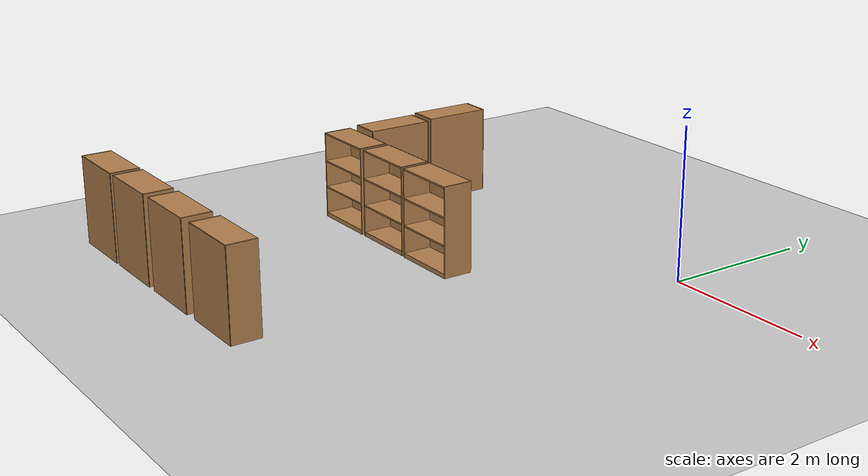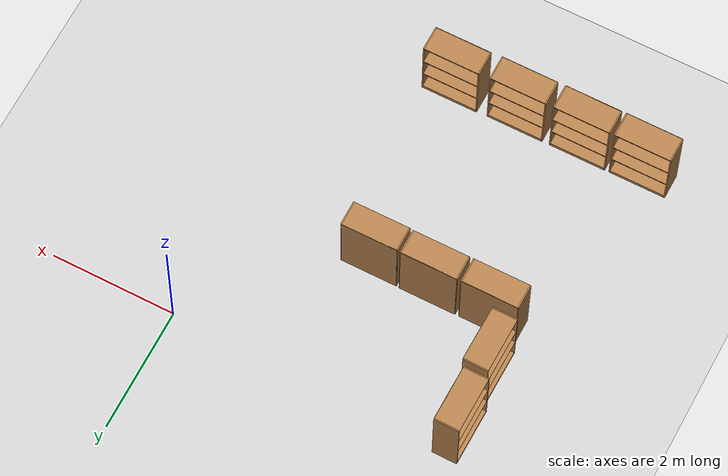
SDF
<sdf version="1.7">
 <world name="default">
  <model name="ground_plane">
   <static>1</static>
   <link name="link">
    <collision name="collision">
     <geometry><plane><normal>0 0 1</normal><size>100 100</size></plane></geometry>
     <surface><friction><ode><mu>100</mu><mu2>50</mu2></ode></friction></surface>
    </collision>
    <visual name="visual">
     <cast_shadows>0</cast_shadows>
     <geometry><plane><normal>0 0 1</normal><size>100 100</size></plane></geometry>
     <material>
      <script><uri>file://media/materials/scripts/gazebo.material</uri><name>Gazebo/Grey</name></script>
     </material>
    </visual>
   </link>
  </model>
  <model name="bookshelf_1">
   <static>1</static>
   <link name="link">
    <inertial><mass>1</mass></inertial>
    <collision name="back">
     <pose>0 0.005 0.6 0 -0 0</pose>
     <geometry><box><size>0.9 0.01 1.2</size></box></geometry>
    </collision>
    <visual name="visual1">
     <pose>0 0.005 0.6 0 -0 0</pose>
     <geometry><box><size>0.9 0.01 1.2</size></box></geometry>
     <material>
      <script><uri>file://media/materials/scripts/gazebo.material</uri><name>Gazebo/Wood</name></script>
     </material>
    </visual>
    <collision name="left_side">
     <pose>0.45 -0.195 0.6 0 -0 0</pose>
     <geometry><box><size>0.02 0.4 1.2</size></box></geometry>
    </collision>
    <visual name="visual2">
     <pose>0.45 -0.195 0.6 0 -0 0</pose>
     <geometry><box><size>0.02 0.4 1.2</size></box></geometry>
     <material>
      <script><uri>file://media/materials/scripts/gazebo.material</uri><name>Gazebo/Wood</name></script>
     </material>
    </visual>
    <collision name="right_side">
     <pose>-0.45 -0.195 0.6 0 -0 0</pose>
     <geometry><box><size>0.02 0.4 1.2</size></box></geometry>
    </collision>
    <visual name="visual3">
     <pose>-0.45 -0.195 0.6 0 -0 0</pose>
     <geometry><box><size>0.02 0.4 1.2</size></box></geometry>
     <material>
      <script><uri>file://media/materials/scripts/gazebo.material</uri><name>Gazebo/Wood</name></script>
     </material>
    </visual>
    <collision name="bottom">
     <pose>0 -0.195 0.03 0 -0 0</pose>
     <geometry><box><size>0.88 0.4 0.06</size></box></geometry>
    </collision>
    <visual name="visual4">
     <pose>0 -0.195 0.03 0 -0 0</pose>
     <geometry><box><size>0.88 0.4 0.06</size></box></geometry>
     <material>
      <script><uri>file://media/materials/scripts/gazebo.material</uri><name>Gazebo/Wood</name></script>
     </material>
    </visual>
    <collision name="top">
     <pose>0 -0.195 1.19 0 -0 0</pose>
     <geometry><box><size>0.88 0.4 0.02</size></box></geometry>
    </collision>
    <visual name="visual5">
     <pose>0 -0.195 1.19 0 -0 0</pose>
     <geometry><box><size>0.88 0.4 0.02</size></box></geometry>
     <material>
      <script><uri>file://media/materials/scripts/gazebo.material</uri><name>Gazebo/Wood</name></script>
     </material>
    </visual>
    <collision name="low_shelf">
     <pose>0 -0.195 0.43 0 -0 0</pose>
     <geometry><box><size>0.88 0.4 0.02</size></box></geometry>
    </collision>
    <visual name="visual6">
     <pose>0 -0.195 0.43 0 -0 0</pose>
     <geometry><box><size>0.88 0.4 0.02</size></box></geometry>
     <material>
      <script><uri>file://media/materials/scripts/gazebo.material</uri><name>Gazebo/Wood</name></script>
     </material>
    </visual>
    <collision name="high_shelf">
     <pose>0 -0.195 0.8 0 -0 0</pose>
     <geometry><box><size>0.88 0.4 0.02</size></box></geometry>
    </collision>
    <visual name="visual7">
     <pose>0 -0.195 0.8 0 -0 0</pose>
     <geometry><box><size>0.88 0.4 0.02</size></box></geometry>
     <material>
      <script><uri>file://media/materials/scripts/gazebo.material</uri><name>Gazebo/Wood</name></script>
     </material>
    </visual>
   </link>
   <pose>-2.19834 -1.90275 0 0 -0 0</pose>
  </model>
  <model name="bookshelf_2">
   <static>1</static>
   <link name="link">
    <inertial><mass>1</mass></inertial>
    <collision name="back">
     <pose>0 0.005 0.6 0 -0 0</pose>
     <geometry><box><size>0.9 0.01 1.2</size></box></geometry>
    </collision>
    <visual name="visual1">
     <pose>0 0.005 0.6 0 -0 0</pose>
     <geometry><box><size>0.9 0.01 1.2</size></box></geometry>
     <material>
      <script><uri>file://media/materials/scripts/gazebo.material</uri><name>Gazebo/Wood</name></script>
     </material>
    </visual>
    <collision name="left_side">
     <pose>0.45 -0.195 0.6 0 -0 0</pose>
     <geometry><box><size>0.02 0.4 1.2</size></box></geometry>
    </collision>
    <visual name="visual2">
     <pose>0.45 -0.195 0.6 0 -0 0</pose>
     <geometry><box><size>0.02 0.4 1.2</size></box></geometry>
     <material>
      <script><uri>file://media/materials/scripts/gazebo.material</uri><name>Gazebo/Wood</name></script>
     </material>
    </visual>
    <collision name="right_side">
     <pose>-0.45 -0.195 0.6 0 -0 0</pose>
     <geometry><box><size>0.02 0.4 1.2</size></box></geometry>
    </collision>
    <visual name="visual3">
     <pose>-0.45 -0.195 0.6 0 -0 0</pose>
     <geometry><box><size>0.02 0.4 1.2</size></box></geometry>
     <material>
      <script><uri>file://media/materials/scripts/gazebo.material</uri><name>Gazebo/Wood</name></script>
     </material>
    </visual>
    <collision name="bottom">
     <pose>0 -0.195 0.03 0 -0 0</pose>
     <geometry><box><size>0.88 0.4 0.06</size></box></geometry>
    </collision>
    <visual name="visual4">
     <pose>0 -0.195 0.03 0 -0 0</pose>
     <geometry><box><size>0.88 0.4 0.06</size></box></geometry>
     <material>
      <script><uri>file://media/materials/scripts/gazebo.material</uri><name>Gazebo/Wood</name></script>
     </material>
    </visual>
    <collision name="top">
     <pose>0 -0.195 1.19 0 -0 0</pose>
     <geometry><box><size>0.88 0.4 0.02</size></box></geometry>
    </collision>
    <visual name="visual5">
     <pose>0 -0.195 1.19 0 -0 0</pose>
     <geometry><box><size>0.88 0.4 0.02</size></box></geometry>
     <material>
      <script><uri>file://media/materials/scripts/gazebo.material</uri><name>Gazebo/Wood</name></script>
     </material>
    </visual>
    <collision name="low_shelf">
     <pose>0 -0.195 0.43 0 -0 0</pose>
     <geometry><box><size>0.88 0.4 0.02</size></box></geometry>
    </collision>
    <visual name="visual6">
     <pose>0 -0.195 0.43 0 -0 0</pose>
     <geometry><box><size>0.88 0.4 0.02</size></box></geometry>
     <material>
      <script><uri>file://media/materials/scripts/gazebo.material</uri><name>Gazebo/Wood</name></script>
     </material>
    </visual>
    <collision name="high_shelf">
     <pose>0 -0.195 0.8 0 -0 0</pose>
     <geometry><box><size>0.88 0.4 0.02</size></box></geometry>
    </collision>
    <visual name="visual7">
     <pose>0 -0.195 0.8 0 -0 0</pose>
     <geometry><box><size>0.88 0.4 0.02</size></box></geometry>
     <material>
      <script><uri>file://media/materials/scripts/gazebo.material</uri><name>Gazebo/Wood</name></script>
     </material>
    </visual>
   </link>
   <pose>-3.15819 -1.89537 0 0 -0 0</pose>
  </model>
  <model name="bookshelf_3">
   <static>1</static>
   <link name="link">
    <inertial><mass>1</mass></inertial>
    <collision name="back">
     <pose>0 0.005 0.6 0 -0 0</pose>
     <geometry><box><size>0.9 0.01 1.2</size></box></geometry>
    </collision>
    <visual name="visual1">
     <pose>0 0.005 0.6 0 -0 0</pose>
     <geometry><box><size>0.9 0.01 1.2</size></box></geometry>
     <material>
      <script><uri>file://media/materials/scripts/gazebo.material</uri><name>Gazebo/Wood</name></script>
     </material>
    </visual>
    <collision name="left_side">
     <pose>0.45 -0.195 0.6 0 -0 0</pose>
     <geometry><box><size>0.02 0.4 1.2</size></box></geometry>
    </collision>
    <visual name="visual2">
     <pose>0.45 -0.195 0.6 0 -0 0</pose>
     <geometry><box><size>0.02 0.4 1.2</size></box></geometry>
     <material>
      <script><uri>file://media/materials/scripts/gazebo.material</uri><name>Gazebo/Wood</name></script>
     </material>
    </visual>
    <collision name="right_side">
     <pose>-0.45 -0.195 0.6 0 -0 0</pose>
     <geometry><box><size>0.02 0.4 1.2</size></box></geometry>
    </collision>
    <visual name="visual3">
     <pose>-0.45 -0.195 0.6 0 -0 0</pose>
     <geometry><box><size>0.02 0.4 1.2</size></box></geometry>
     <material>
      <script><uri>file://media/materials/scripts/gazebo.material</uri><name>Gazebo/Wood</name></script>
     </material>
    </visual>
    <collision name="bottom">
     <pose>0 -0.195 0.03 0 -0 0</pose>
     <geometry><box><size>0.88 0.4 0.06</size></box></geometry>
    </collision>
    <visual name="visual4">
     <pose>0 -0.195 0.03 0 -0 0</pose>
     <geometry><box><size>0.88 0.4 0.06</size></box></geometry>
     <material>
      <script><uri>file://media/materials/scripts/gazebo.material</uri><name>Gazebo/Wood</name></script>
     </material>
    </visual>
    <collision name="top">
     <pose>0 -0.195 1.19 0 -0 0</pose>
     <geometry><box><size>0.88 0.4 0.02</size></box></geometry>
    </collision>
    <visual name="visual5">
     <pose>0 -0.195 1.19 0 -0 0</pose>
     <geometry><box><size>0.88 0.4 0.02</size></box></geometry>
     <material>
      <script><uri>file://media/materials/scripts/gazebo.material</uri><name>Gazebo/Wood</name></script>
     </material>
    </visual>
    <collision name="low_shelf">
     <pose>0 -0.195 0.43 0 -0 0</pose>
     <geometry><box><size>0.88 0.4 0.02</size></box></geometry>
    </collision>
    <visual name="visual6">
     <pose>0 -0.195 0.43 0 -0 0</pose>
     <geometry><box><size>0.88 0.4 0.02</size></box></geometry>
     <material>
      <script><uri>file://media/materials/scripts/gazebo.material</uri><name>Gazebo/Wood</name></script>
     </material>
    </visual>
    <collision name="high_shelf">
     <pose>0 -0.195 0.8 0 -0 0</pose>
     <geometry><box><size>0.88 0.4 0.02</size></box></geometry>
    </collision>
    <visual name="visual7">
     <pose>0 -0.195 0.8 0 -0 0</pose>
     <geometry><box><size>0.88 0.4 0.02</size></box></geometry>
     <material>
      <script><uri>file://media/materials/scripts/gazebo.material</uri><name>Gazebo/Wood</name></script>
     </material>
    </visual>
   </link>
   <pose>-4.12815 -1.89828 0 0 -0 0</pose>
  </model>
  <model name="bookshelf_4_clone_3">
   <static>1</static>
   <link name="link">
    <inertial><mass>1</mass></inertial>
    <collision name="back">
     <pose>0 0.005 0.6 0 -0 0</pose>
     <geometry><box><size>0.9 0.01 1.2</size></box></geometry>
    </collision>
    <visual name="visual1">
     <pose>0 0.005 0.6 0 -0 0</pose>
     <geometry><box><size>0.9 0.01 1.2</size></box></geometry>
     <material>
      <script><uri>file://media/materials/scripts/gazebo.material</uri><name>Gazebo/Wood</name></script>
     </material>
    </visual>
    <collision name="left_side">
     <pose>0.45 -0.195 0.6 0 -0 0</pose>
     <geometry><box><size>0.02 0.4 1.2</size></box></geometry>
    </collision>
    <visual name="visual2">
     <pose>0.45 -0.195 0.6 0 -0 0</pose>
     <geometry><box><size>0.02 0.4 1.2</size></box></geometry>
     <material>
      <script><uri>file://media/materials/scripts/gazebo.material</uri><name>Gazebo/Wood</name></script>
     </material>
    </visual>
    <collision name="right_side">
     <pose>-0.45 -0.195 0.6 0 -0 0</pose>
     <geometry><box><size>0.02 0.4 1.2</size></box></geometry>
    </collision>
    <visual name="visual3">
     <pose>-0.45 -0.195 0.6 0 -0 0</pose>
     <geometry><box><size>0.02 0.4 1.2</size></box></geometry>
     <material>
      <script><uri>file://media/materials/scripts/gazebo.material</uri><name>Gazebo/Wood</name></script>
     </material>
    </visual>
    <collision name="bottom">
     <pose>0 -0.195 0.03 0 -0 0</pose>
     <geometry><box><size>0.88 0.4 0.06</size></box></geometry>
    </collision>
    <visual name="visual4">
     <pose>0 -0.195 0.03 0 -0 0</pose>
     <geometry><box><size>0.88 0.4 0.06</size></box></geometry>
     <material>
      <script><uri>file://media/materials/scripts/gazebo.material</uri><name>Gazebo/Wood</name></script>
     </material>
    </visual>
    <collision name="top">
     <pose>0 -0.195 1.19 0 -0 0</pose>
     <geometry><box><size>0.88 0.4 0.02</size></box></geometry>
    </collision>
    <visual name="visual5">
     <pose>0 -0.195 1.19 0 -0 0</pose>
     <geometry><box><size>0.88 0.4 0.02</size></box></geometry>
     <material>
      <script><uri>file://media/materials/scripts/gazebo.material</uri><name>Gazebo/Wood</name></script>
     </material>
    </visual>
    <collision name="low_shelf">
     <pose>0 -0.195 0.43 0 -0 0</pose>
     <geometry><box><size>0.88 0.4 0.02</size></box></geometry>
    </collision>
    <visual name="visual6">
     <pose>0 -0.195 0.43 0 -0 0</pose>
     <geometry><box><size>0.88 0.4 0.02</size></box></geometry>
     <material>
      <script><uri>file://media/materials/scripts/gazebo.material</uri><name>Gazebo/Wood</name></script>
     </material>
    </visual>
    <collision name="high_shelf">
     <pose>0 -0.195 0.8 0 -0 0</pose>
     <geometry><box><size>0.88 0.4 0.02</size></box></geometry>
    </collision>
    <visual name="visual7">
     <pose>0 -0.195 0.8 0 -0 0</pose>
     <geometry><box><size>0.88 0.4 0.02</size></box></geometry>
     <material>
      <script><uri>file://media/materials/scripts/gazebo.material</uri><name>Gazebo/Wood</name></script>
     </material>
    </visual>
   </link>
   <pose>-1.94261 -5.3745 0 0 -0 3.13902</pose>
  </model>
  <model name="bookshelf_4_clone_4">
   <static>1</static>
   <link name="link">
    <inertial><mass>1</mass></inertial>
    <collision name="back">
     <pose>0 0.005 0.6 0 -0 0</pose>
     <geometry><box><size>0.9 0.01 1.2</size></box></geometry>
    </collision>
    <visual name="visual1">
     <pose>0 0.005 0.6 0 -0 0</pose>
     <geometry><box><size>0.9 0.01 1.2</size></box></geometry>
     <material>
      <script><uri>file://media/materials/scripts/gazebo.material</uri><name>Gazebo/Wood</name></script>
     </material>
    </visual>
    <collision name="left_side">
     <pose>0.45 -0.195 0.6 0 -0 0</pose>
     <geometry><box><size>0.02 0.4 1.2</size></box></geometry>
    </collision>
    <visual name="visual2">
     <pose>0.45 -0.195 0.6 0 -0 0</pose>
     <geometry><box><size>0.02 0.4 1.2</size></box></geometry>
     <material>
      <script><uri>file://media/materials/scripts/gazebo.material</uri><name>Gazebo/Wood</name></script>
     </material>
    </visual>
    <collision name="right_side">
     <pose>-0.45 -0.195 0.6 0 -0 0</pose>
     <geometry><box><size>0.02 0.4 1.2</size></box></geometry>
    </collision>
    <visual name="visual3">
     <pose>-0.45 -0.195 0.6 0 -0 0</pose>
     <geometry><box><size>0.02 0.4 1.2</size></box></geometry>
     <material>
      <script><uri>file://media/materials/scripts/gazebo.material</uri><name>Gazebo/Wood</name></script>
     </material>
    </visual>
    <collision name="bottom">
     <pose>0 -0.195 0.03 0 -0 0</pose>
     <geometry><box><size>0.88 0.4 0.06</size></box></geometry>
    </collision>
    <visual name="visual4">
     <pose>0 -0.195 0.03 0 -0 0</pose>
     <geometry><box><size>0.88 0.4 0.06</size></box></geometry>
     <material>
      <script><uri>file://media/materials/scripts/gazebo.material</uri><name>Gazebo/Wood</name></script>
     </material>
    </visual>
    <collision name="top">
     <pose>0 -0.195 1.19 0 -0 0</pose>
     <geometry><box><size>0.88 0.4 0.02</size></box></geometry>
    </collision>
    <visual name="visual5">
     <pose>0 -0.195 1.19 0 -0 0</pose>
     <geometry><box><size>0.88 0.4 0.02</size></box></geometry>
     <material>
      <script><uri>file://media/materials/scripts/gazebo.material</uri><name>Gazebo/Wood</name></script>
     </material>
    </visual>
    <collision name="low_shelf">
     <pose>0 -0.195 0.43 0 -0 0</pose>
     <geometry><box><size>0.88 0.4 0.02</size></box></geometry>
    </collision>
    <visual name="visual6">
     <pose>0 -0.195 0.43 0 -0 0</pose>
     <geometry><box><size>0.88 0.4 0.02</size></box></geometry>
     <material>
      <script><uri>file://media/materials/scripts/gazebo.material</uri><name>Gazebo/Wood</name></script>
     </material>
    </visual>
    <collision name="high_shelf">
     <pose>0 -0.195 0.8 0 -0 0</pose>
     <geometry><box><size>0.88 0.4 0.02</size></box></geometry>
    </collision>
    <visual name="visual7">
     <pose>0 -0.195 0.8 0 -0 0</pose>
     <geometry><box><size>0.88 0.4 0.02</size></box></geometry>
     <material>
      <script><uri>file://media/materials/scripts/gazebo.material</uri><name>Gazebo/Wood</name></script>
     </material>
    </visual>
   </link>
   <pose>-3.02509 -5.38795 0 0 -0 3.13902</pose>
  </model>
  <model name="bookshelf_4_clone_5">
   <static>1</static>
   <link name="link">
    <inertial><mass>1</mass></inertial>
    <collision name="back">
     <pose>0 0.005 0.6 0 -0 0</pose>
     <geometry><box><size>0.9 0.01 1.2</size></box></geometry>
    </collision>
    <visual name="visual1">
     <pose>0 0.005 0.6 0 -0 0</pose>
     <geometry><box><size>0.9 0.01 1.2</size></box></geometry>
     <material>
      <script><uri>file://media/materials/scripts/gazebo.material</uri><name>Gazebo/Wood</name></script>
     </material>
    </visual>
    <collision name="left_side">
     <pose>0.45 -0.195 0.6 0 -0 0</pose>
     <geometry><box><size>0.02 0.4 1.2</size></box></geometry>
    </collision>
    <visual name="visual2">
     <pose>0.45 -0.195 0.6 0 -0 0</pose>
     <geometry><box><size>0.02 0.4 1.2</size></box></geometry>
     <material>
      <script><uri>file://media/materials/scripts/gazebo.material</uri><name>Gazebo/Wood</name></script>
     </material>
    </visual>
    <collision name="right_side">
     <pose>-0.45 -0.195 0.6 0 -0 0</pose>
     <geometry><box><size>0.02 0.4 1.2</size></box></geometry>
    </collision>
    <visual name="visual3">
     <pose>-0.45 -0.195 0.6 0 -0 0</pose>
     <geometry><box><size>0.02 0.4 1.2</size></box></geometry>
     <material>
      <script><uri>file://media/materials/scripts/gazebo.material</uri><name>Gazebo/Wood</name></script>
     </material>
    </visual>
    <collision name="bottom">
     <pose>0 -0.195 0.03 0 -0 0</pose>
     <geometry><box><size>0.88 0.4 0.06</size></box></geometry>
    </collision>
    <visual name="visual4">
     <pose>0 -0.195 0.03 0 -0 0</pose>
     <geometry><box><size>0.88 0.4 0.06</size></box></geometry>
     <material>
      <script><uri>file://media/materials/scripts/gazebo.material</uri><name>Gazebo/Wood</name></script>
     </material>
    </visual>
    <collision name="top">
     <pose>0 -0.195 1.19 0 -0 0</pose>
     <geometry><box><size>0.88 0.4 0.02</size></box></geometry>
    </collision>
    <visual name="visual5">
     <pose>0 -0.195 1.19 0 -0 0</pose>
     <geometry><box><size>0.88 0.4 0.02</size></box></geometry>
     <material>
      <script><uri>file://media/materials/scripts/gazebo.material</uri><name>Gazebo/Wood</name></script>
     </material>
    </visual>
    <collision name="low_shelf">
     <pose>0 -0.195 0.43 0 -0 0</pose>
     <geometry><box><size>0.88 0.4 0.02</size></box></geometry>
    </collision>
    <visual name="visual6">
     <pose>0 -0.195 0.43 0 -0 0</pose>
     <geometry><box><size>0.88 0.4 0.02</size></box></geometry>
     <material>
      <script><uri>file://media/materials/scripts/gazebo.material</uri><name>Gazebo/Wood</name></script>
     </material>
    </visual>
    <collision name="high_shelf">
     <pose>0 -0.195 0.8 0 -0 0</pose>
     <geometry><box><size>0.88 0.4 0.02</size></box></geometry>
    </collision>
    <visual name="visual7">
     <pose>0 -0.195 0.8 0 -0 0</pose>
     <geometry><box><size>0.88 0.4 0.02</size></box></geometry>
     <material>
      <script><uri>file://media/materials/scripts/gazebo.material</uri><name>Gazebo/Wood</name></script>
     </material>
    </visual>
   </link>
   <pose>-4.05654 -5.39104 0 0 -0 3.13902</pose>
  </model>
  <model name="bookshelf_4_clone_6">
   <static>1</static>
   <link name="link">
    <inertial><mass>1</mass></inertial>
    <collision name="back">
     <pose>0 0.005 0.6 0 -0 0</pose>
     <geometry><box><size>0.9 0.01 1.2</size></box></geometry>
    </collision>
    <visual name="visual1">
     <pose>0 0.005 0.6 0 -0 0</pose>
     <geometry><box><size>0.9 0.01 1.2</size></box></geometry>
     <material>
      <script><uri>file://media/materials/scripts/gazebo.material</uri><name>Gazebo/Wood</name></script>
     </material>
    </visual>
    <collision name="left_side">
     <pose>0.45 -0.195 0.6 0 -0 0</pose>
     <geometry><box><size>0.02 0.4 1.2</size></box></geometry>
    </collision>
    <visual name="visual2">
     <pose>0.45 -0.195 0.6 0 -0 0</pose>
     <geometry><box><size>0.02 0.4 1.2</size></box></geometry>
     <material>
      <script><uri>file://media/materials/scripts/gazebo.material</uri><name>Gazebo/Wood</name></script>
     </material>
    </visual>
    <collision name="right_side">
     <pose>-0.45 -0.195 0.6 0 -0 0</pose>
     <geometry><box><size>0.02 0.4 1.2</size></box></geometry>
    </collision>
    <visual name="visual3">
     <pose>-0.45 -0.195 0.6 0 -0 0</pose>
     <geometry><box><size>0.02 0.4 1.2</size></box></geometry>
     <material>
      <script><uri>file://media/materials/scripts/gazebo.material</uri><name>Gazebo/Wood</name></script>
     </material>
    </visual>
    <collision name="bottom">
     <pose>0 -0.195 0.03 0 -0 0</pose>
     <geometry><box><size>0.88 0.4 0.06</size></box></geometry>
    </collision>
    <visual name="visual4">
     <pose>0 -0.195 0.03 0 -0 0</pose>
     <geometry><box><size>0.88 0.4 0.06</size></box></geometry>
     <material>
      <script><uri>file://media/materials/scripts/gazebo.material</uri><name>Gazebo/Wood</name></script>
     </material>
    </visual>
    <collision name="top">
     <pose>0 -0.195 1.19 0 -0 0</pose>
     <geometry><box><size>0.88 0.4 0.02</size></box></geometry>
    </collision>
    <visual name="visual5">
     <pose>0 -0.195 1.19 0 -0 0</pose>
     <geometry><box><size>0.88 0.4 0.02</size></box></geometry>
     <material>
      <script><uri>file://media/materials/scripts/gazebo.material</uri><name>Gazebo/Wood</name></script>
     </material>
    </visual>
    <collision name="low_shelf">
     <pose>0 -0.195 0.43 0 -0 0</pose>
     <geometry><box><size>0.88 0.4 0.02</size></box></geometry>
    </collision>
    <visual name="visual6">
     <pose>0 -0.195 0.43 0 -0 0</pose>
     <geometry><box><size>0.88 0.4 0.02</size></box></geometry>
     <material>
      <script><uri>file://media/materials/scripts/gazebo.material</uri><name>Gazebo/Wood</name></script>
     </material>
    </visual>
    <collision name="high_shelf">
     <pose>0 -0.195 0.8 0 -0 0</pose>
     <geometry><box><size>0.88 0.4 0.02</size></box></geometry>
    </collision>
    <visual name="visual7">
     <pose>0 -0.195 0.8 0 -0 0</pose>
     <geometry><box><size>0.88 0.4 0.02</size></box></geometry>
     <material>
      <script><uri>file://media/materials/scripts/gazebo.material</uri><name>Gazebo/Wood</name></script>
     </material>
    </visual>
   </link>
   <pose>-5.03697 -5.39397 0 0 -0 3.13902</pose>
  </model>
  <model name="bookshelf_4_clone_7">
   <static>1</static>
   <link name="link">
    <inertial><mass>1</mass></inertial>
    <collision name="back">
     <pose>0 0.005 0.6 0 -0 0</pose>
     <geometry><box><size>0.9 0.01 1.2</size></box></geometry>
    </collision>
    <visual name="visual1">
     <pose>0 0.005 0.6 0 -0 0</pose>
     <geometry><box><size>0.9 0.01 1.2</size></box></geometry>
     <material>
      <script><uri>file://media/materials/scripts/gazebo.material</uri><name>Gazebo/Wood</name></script>
     </material>
    </visual>
    <collision name="left_side">
     <pose>0.45 -0.195 0.6 0 -0 0</pose>
     <geometry><box><size>0.02 0.4 1.2</size></box></geometry>
    </collision>
    <visual name="visual2">
     <pose>0.45 -0.195 0.6 0 -0 0</pose>
     <geometry><box><size>0.02 0.4 1.2</size></box></geometry>
     <material>
      <script><uri>file://media/materials/scripts/gazebo.material</uri><name>Gazebo/Wood</name></script>
     </material>
    </visual>
    <collision name="right_side">
     <pose>-0.45 -0.195 0.6 0 -0 0</pose>
     <geometry><box><size>0.02 0.4 1.2</size></box></geometry>
    </collision>
    <visual name="visual3">
     <pose>-0.45 -0.195 0.6 0 -0 0</pose>
     <geometry><box><size>0.02 0.4 1.2</size></box></geometry>
     <material>
      <script><uri>file://media/materials/scripts/gazebo.material</uri><name>Gazebo/Wood</name></script>
     </material>
    </visual>
    <collision name="bottom">
     <pose>0 -0.195 0.03 0 -0 0</pose>
     <geometry><box><size>0.88 0.4 0.06</size></box></geometry>
    </collision>
    <visual name="visual4">
     <pose>0 -0.195 0.03 0 -0 0</pose>
     <geometry><box><size>0.88 0.4 0.06</size></box></geometry>
     <material>
      <script><uri>file://media/materials/scripts/gazebo.material</uri><name>Gazebo/Wood</name></script>
     </material>
    </visual>
    <collision name="top">
     <pose>0 -0.195 1.19 0 -0 0</pose>
     <geometry><box><size>0.88 0.4 0.02</size></box></geometry>
    </collision>
    <visual name="visual5">
     <pose>0 -0.195 1.19 0 -0 0</pose>
     <geometry><box><size>0.88 0.4 0.02</size></box></geometry>
     <material>
      <script><uri>file://media/materials/scripts/gazebo.material</uri><name>Gazebo/Wood</name></script>
     </material>
    </visual>
    <collision name="low_shelf">
     <pose>0 -0.195 0.43 0 -0 0</pose>
     <geometry><box><size>0.88 0.4 0.02</size></box></geometry>
    </collision>
    <visual name="visual6">
     <pose>0 -0.195 0.43 0 -0 0</pose>
     <geometry><box><size>0.88 0.4 0.02</size></box></geometry>
     <material>
      <script><uri>file://media/materials/scripts/gazebo.material</uri><name>Gazebo/Wood</name></script>
     </material>
    </visual>
    <collision name="high_shelf">
     <pose>0 -0.195 0.8 0 -0 0</pose>
     <geometry><box><size>0.88 0.4 0.02</size></box></geometry>
    </collision>
    <visual name="visual7">
     <pose>0 -0.195 0.8 0 -0 0</pose>
     <geometry><box><size>0.88 0.4 0.02</size></box></geometry>
     <material>
      <script><uri>file://media/materials/scripts/gazebo.material</uri><name>Gazebo/Wood</name></script>
     </material>
    </visual>
   </link>
   <pose>-4.25253 -1.28599 0 0 0 -1.58422</pose>
  </model>
  <model name="bookshelf_4_clone_8">
   <static>1</static>
   <link name="link">
    <inertial><mass>1</mass></inertial>
    <collision name="back">
     <pose>0 0.005 0.6 0 -0 0</pose>
     <geometry><box><size>0.9 0.01 1.2</size></box></geometry>
    </collision>
    <visual name="visual1">
     <pose>0 0.005 0.6 0 -0 0</pose>
     <geometry><box><size>0.9 0.01 1.2</size></box></geometry>
     <material>
      <script><uri>file://media/materials/scripts/gazebo.material</uri><name>Gazebo/Wood</name></script>
     </material>
    </visual>
    <collision name="left_side">
     <pose>0.45 -0.195 0.6 0 -0 0</pose>
     <geometry><box><size>0.02 0.4 1.2</size></box></geometry>
    </collision>
    <visual name="visual2">
     <pose>0.45 -0.195 0.6 0 -0 0</pose>
     <geometry><box><size>0.02 0.4 1.2</size></box></geometry>
     <material>
      <script><uri>file://media/materials/scripts/gazebo.material</uri><name>Gazebo/Wood</name></script>
     </material>
    </visual>
    <collision name="right_side">
     <pose>-0.45 -0.195 0.6 0 -0 0</pose>
     <geometry><box><size>0.02 0.4 1.2</size></box></geometry>
    </collision>
    <visual name="visual3">
     <pose>-0.45 -0.195 0.6 0 -0 0</pose>
     <geometry><box><size>0.02 0.4 1.2</size></box></geometry>
     <material>
      <script><uri>file://media/materials/scripts/gazebo.material</uri><name>Gazebo/Wood</name></script>
     </material>
    </visual>
    <collision name="bottom">
     <pose>0 -0.195 0.03 0 -0 0</pose>
     <geometry><box><size>0.88 0.4 0.06</size></box></geometry>
    </collision>
    <visual name="visual4">
     <pose>0 -0.195 0.03 0 -0 0</pose>
     <geometry><box><size>0.88 0.4 0.06</size></box></geometry>
     <material>
      <script><uri>file://media/materials/scripts/gazebo.material</uri><name>Gazebo/Wood</name></script>
     </material>
    </visual>
    <collision name="top">
     <pose>0 -0.195 1.19 0 -0 0</pose>
     <geometry><box><size>0.88 0.4 0.02</size></box></geometry>
    </collision>
    <visual name="visual5">
     <pose>0 -0.195 1.19 0 -0 0</pose>
     <geometry><box><size>0.88 0.4 0.02</size></box></geometry>
     <material>
      <script><uri>file://media/materials/scripts/gazebo.material</uri><name>Gazebo/Wood</name></script>
     </material>
    </visual>
    <collision name="low_shelf">
     <pose>0 -0.195 0.43 0 -0 0</pose>
     <geometry><box><size>0.88 0.4 0.02</size></box></geometry>
    </collision>
    <visual name="visual6">
     <pose>0 -0.195 0.43 0 -0 0</pose>
     <geometry><box><size>0.88 0.4 0.02</size></box></geometry>
     <material>
      <script><uri>file://media/materials/scripts/gazebo.material</uri><name>Gazebo/Wood</name></script>
     </material>
    </visual>
    <collision name="high_shelf">
     <pose>0 -0.195 0.8 0 -0 0</pose>
     <geometry><box><size>0.88 0.4 0.02</size></box></geometry>
    </collision>
    <visual name="visual7">
     <pose>0 -0.195 0.8 0 -0 0</pose>
     <geometry><box><size>0.88 0.4 0.02</size></box></geometry>
     <material>
      <script><uri>file://media/materials/scripts/gazebo.material</uri><name>Gazebo/Wood</name></script>
     </material>
    </visual>
   </link>
   <pose>-4.30653 -0.285512 0 0 0 -1.58422</pose>
  </model>
 </world>
</sdf>
